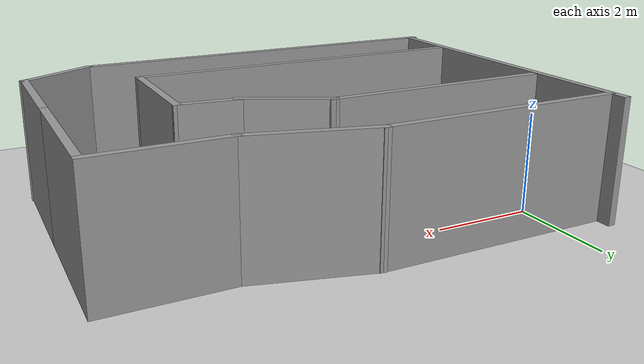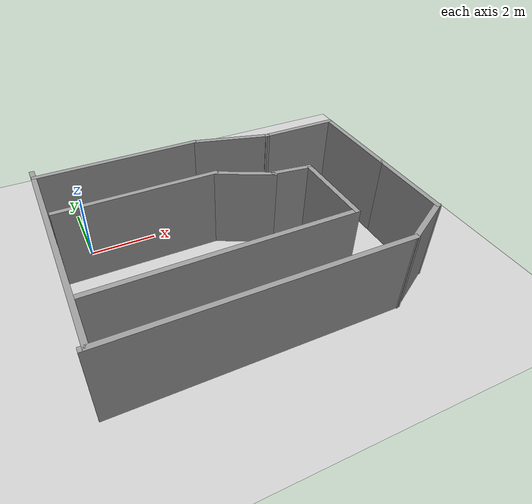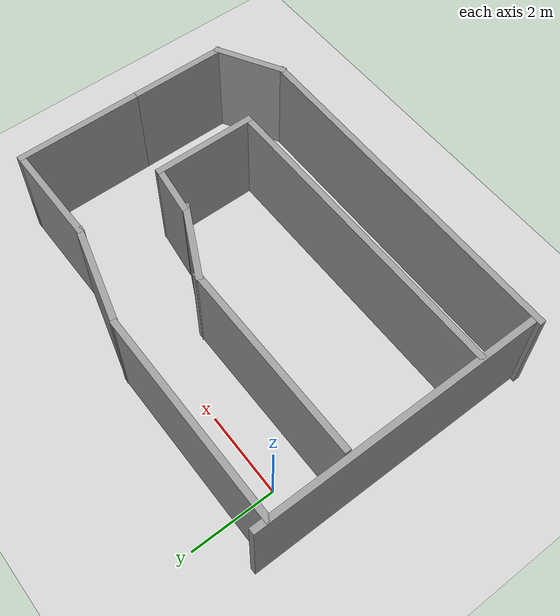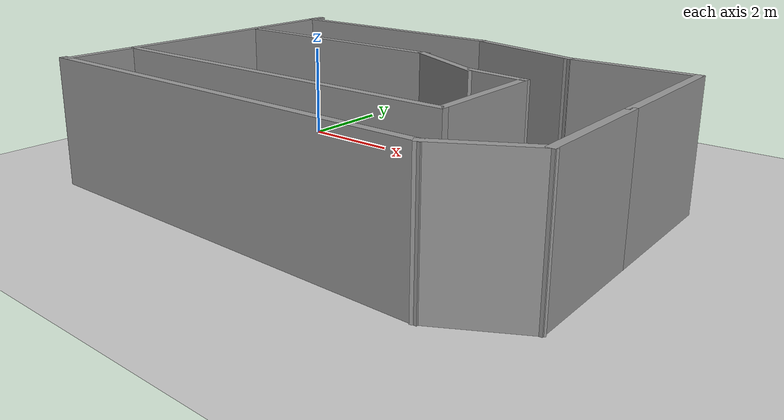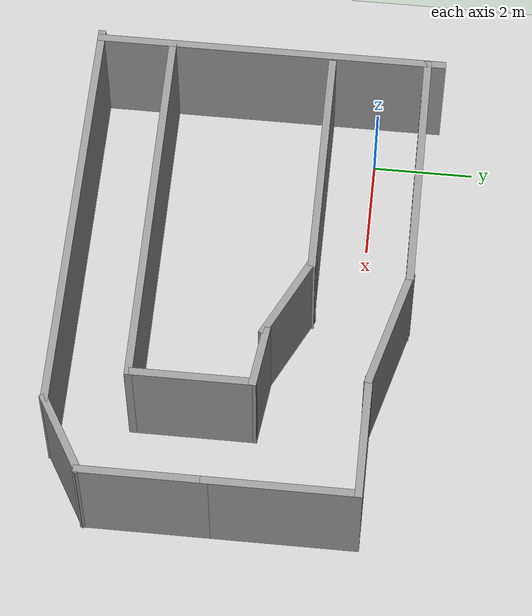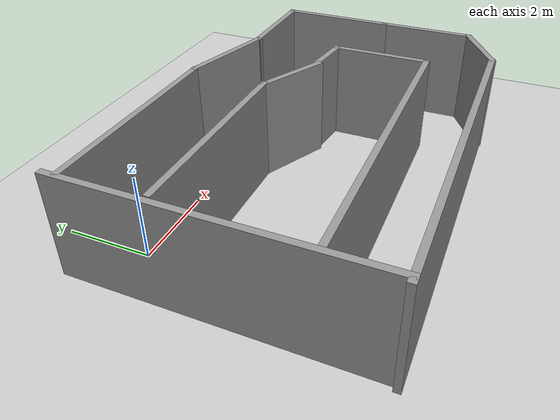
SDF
<sdf version="1.6">
 <world name="default">
  <light name="sun" type="directional">
   <pose>0 0 10 0 -0 0</pose>
   <diffuse>0.8 0.8 0.8 1</diffuse>
   <specular>0.2 0.2 0.2 1</specular>
   <attenuation>
    <range>1000</range>
    <constant>0.9</constant>
    <linear>0.01</linear>
    <quadratic>0.001</quadratic>
   </attenuation>
   <direction>-0.5 0.1 -0.9</direction>
  </light>
  <model name="ground_plane">
   <static>1</static>
   <link name="link">
    <collision name="collision">
     <geometry><plane><normal>0 0 1</normal><size>100 100</size></plane></geometry>
     <surface><friction><ode><mu>100</mu><mu2>50</mu2></ode></friction></surface>
    </collision>
    <visual name="visual">
     <cast_shadows>0</cast_shadows>
     <geometry><plane><normal>0 0 1</normal><size>100 100</size></plane></geometry>
     <material>
      <script><uri>file://media/materials/scripts/gazebo.material</uri><name>Gazebo/Grey</name></script>
     </material>
    </visual>
   </link>
  </model>
  <gravity>0 0 -9.8</gravity>
  <magnetic_field>6e-06 2.3e-05 -4.2e-05</magnetic_field>
  <atmosphere type="adiabatic"/>
  <physics name="default_physics" default="0" type="ode">
   <max_step_size>0.001</max_step_size>
   <real_time_factor>1</real_time_factor>
   <real_time_update_rate>1000</real_time_update_rate>
  </physics>
  <scene><ambient>0.4 0.4 0.4 1</ambient><background>0.7 0.7 0.7 1</background><shadows>1</shadows></scene>
  <audio><device>default</device></audio>
  <spherical_coordinates>
   <surface_model>EARTH_WGS84</surface_model>
   <latitude_deg>0</latitude_deg>
   <longitude_deg>0</longitude_deg>
   <elevation>0</elevation>
   <heading_deg>0</heading_deg>
  </spherical_coordinates>
  <model name="myworldhaha">
   <pose>3.68907 -2.26576 0 0 -0 0</pose>
   <link name="Wall_10">
    <collision name="Wall_10_Collision">
     <geometry><box><size>2.5 0.15 2.5</size></box></geometry>
     <pose>0 0 1.25 0 -0 0</pose>
    </collision>
    <visual name="Wall_10_Visual">
     <pose>0 0 1.25 0 -0 0</pose>
     <geometry><box><size>2.5 0.15 2.5</size></box></geometry>
     <material>
      <script><uri>file://media/materials/scripts/gazebo.material</uri><name>Gazebo/Grey</name></script>
      <ambient>1 1 1 1</ambient>
     </material>
     <meta><layer>0</layer></meta>
    </visual>
    <pose>4.77583 -1.45954 0 0 -0 -1.5708</pose>
   </link>
   <link name="Wall_11">
    <collision name="Wall_11_Collision">
     <geometry><box><size>1.75 0.15 2.5</size></box></geometry>
     <pose>0 0 1.25 0 -0 0</pose>
    </collision>
    <visual name="Wall_11_Visual">
     <pose>0 0 1.25 0 -0 0</pose>
     <geometry><box><size>1.75 0.15 2.5</size></box></geometry>
     <material>
      <script><uri>file://media/materials/scripts/gazebo.material</uri><name>Gazebo/Grey</name></script>
      <ambient>1 1 1 1</ambient>
     </material>
     <meta><layer>0</layer></meta>
    </visual>
    <pose>4.08301 -3.03454 0 0 -0 -2.61799</pose>
   </link>
   <link name="Wall_12">
    <collision name="Wall_12_Collision">
     <geometry><box><size>8.34318 0.15 2.5</size></box></geometry>
     <pose>0 0 1.25 0 -0 0</pose>
    </collision>
    <visual name="Wall_12_Visual">
     <pose>0 0 1.25 0 -0 0</pose>
     <geometry><box><size>8.34318 0.15 2.5</size></box></geometry>
     <material>
      <script><uri>file://media/materials/scripts/gazebo.material</uri><name>Gazebo/Grey</name></script>
      <ambient>1 1 1 1</ambient>
     </material>
     <meta><layer>0</layer></meta>
    </visual>
    <pose>-0.706333 -3.41127 0 0 -0 3.13591</pose>
   </link>
   <link name="Wall_13">
    <collision name="Wall_13_Collision">
     <geometry><box><size>7 0.15 2.5</size></box></geometry>
     <pose>0 0 1.25 0 -0 0</pose>
    </collision>
    <visual name="Wall_13_Visual">
     <pose>0 0 1.25 0 -0 0</pose>
     <geometry><box><size>7 0.15 2.5</size></box></geometry>
     <material>
      <script><uri>file://media/materials/scripts/gazebo.material</uri><name>Gazebo/Grey</name></script>
      <ambient>1 1 1 1</ambient>
     </material>
     <meta><layer>0</layer></meta>
    </visual>
    <pose>-4.70981 0.036988 0 0 -0 1.5708</pose>
   </link>
   <link name="Wall_29">
    <collision name="Wall_29_Collision">
     <geometry><box><size>4.75 0.15 2.5</size></box></geometry>
     <pose>0 0 1.25 0 -0 0</pose>
    </collision>
    <visual name="Wall_29_Visual">
     <pose>0 0 1.25 0 -0 0</pose>
     <geometry><box><size>4.75 0.15 2.5</size></box></geometry>
     <material>
      <script><uri>file://media/materials/scripts/gazebo.material</uri><name>Gazebo/Grey</name></script>
      <ambient>1 1 1 1</ambient>
     </material>
     <meta><layer>0</layer></meta>
    </visual>
    <pose>-2.23274 1.27715 0 0 -0 0</pose>
   </link>
   <link name="Wall_30">
    <collision name="Wall_30_Collision">
     <geometry><box><size>1.89528 0.15 2.5</size></box></geometry>
     <pose>0 0 1.25 0 -0 0</pose>
    </collision>
    <visual name="Wall_30_Visual">
     <pose>0 0 1.25 0 -0 0</pose>
     <geometry><box><size>1.89528 0.15 2.5</size></box></geometry>
     <material>
      <script><uri>file://media/materials/scripts/gazebo.material</uri><name>Gazebo/Grey</name></script>
      <ambient>1 1 1 1</ambient>
     </material>
     <meta><layer>0</layer></meta>
    </visual>
    <pose>0.802342 0.889083 0 0 -0 -0.460848</pose>
   </link>
   <link name="Wall_31">
    <collision name="Wall_31_Collision">
     <geometry><box><size>1.25882 0.15 2.5</size></box></geometry>
     <pose>0 0 1.25 0 -0 0</pose>
    </collision>
    <visual name="Wall_31_Visual">
     <pose>0 0 1.25 0 -0 0</pose>
     <geometry><box><size>1.25882 0.15 2.5</size></box></geometry>
     <material>
      <script><uri>file://media/materials/scripts/gazebo.material</uri><name>Gazebo/Grey</name></script>
      <ambient>1 1 1 1</ambient>
     </material>
     <meta><layer>0</layer></meta>
    </visual>
    <pose>2.13394 0.477752 0 0 -0 -0.126209</pose>
   </link>
   <link name="Wall_35">
    <collision name="Wall_35_Collision">
     <geometry><box><size>2.5 0.15 2.5</size></box></geometry>
     <pose>0 0 1.25 0 -0 0</pose>
    </collision>
    <visual name="Wall_35_Visual">
     <pose>0 0 1.25 0 -0 0</pose>
     <geometry><box><size>2.5 0.15 2.5</size></box></geometry>
     <material>
      <script><uri>file://media/materials/scripts/gazebo.material</uri><name>Gazebo/Grey</name></script>
      <ambient>1 1 1 1</ambient>
     </material>
     <meta><layer>0</layer></meta>
    </visual>
    <pose>2.68394 -0.767034 0 0 -0 -1.5708</pose>
   </link>
   <link name="Wall_36">
    <collision name="Wall_36_Collision">
     <geometry><box><size>7.5 0.15 2.5</size></box></geometry>
     <pose>0 0 1.25 0 -0 0</pose>
    </collision>
    <visual name="Wall_36_Visual">
     <pose>0 0 1.25 0 -0 0</pose>
     <geometry><box><size>7.5 0.15 2.5</size></box></geometry>
     <material>
      <script><uri>file://media/materials/scripts/gazebo.material</uri><name>Gazebo/Grey</name></script>
      <ambient>1 1 1 1</ambient>
     </material>
     <meta><layer>0</layer></meta>
    </visual>
    <pose>-0.991056 -1.94203 0 0 -0 3.14159</pose>
   </link>
   <link name="Wall_5">
    <collision name="Wall_5_Collision">
     <geometry><box><size>5 0.15 2.5</size></box></geometry>
     <pose>0 0 1.25 0 -0 0</pose>
    </collision>
    <visual name="Wall_5_Visual">
     <pose>0 0 1.25 0 -0 0</pose>
     <geometry><box><size>5 0.15 2.5</size></box></geometry>
     <material>
      <script><uri>file://media/materials/scripts/gazebo.material</uri><name>Gazebo/Grey</name></script>
      <ambient>1 1 1 1</ambient>
     </material>
     <meta><layer>0</layer></meta>
    </visual>
    <pose>-2.2691 3.17369 0 0 -0 0</pose>
   </link>
   <link name="Wall_6">
    <collision name="Wall_6_Collision">
     <geometry><box><size>2.5 0.15 2.5</size></box></geometry>
     <pose>0 0 1.25 0 -0 0</pose>
    </collision>
    <visual name="Wall_6_Visual">
     <pose>0 0 1.25 0 -0 0</pose>
     <geometry><box><size>2.5 0.15 2.5</size></box></geometry>
     <material>
      <script><uri>file://media/materials/scripts/gazebo.material</uri><name>Gazebo/Grey</name></script>
      <ambient>1 1 1 1</ambient>
     </material>
     <meta><layer>0</layer></meta>
    </visual>
    <pose>1.29087 2.86958 0 0 -0 -0.261799</pose>
   </link>
   <link name="Wall_8">
    <collision name="Wall_8_Collision">
     <geometry><box><size>2.5 0.15 2.5</size></box></geometry>
     <pose>0 0 1.25 0 -0 0</pose>
    </collision>
    <visual name="Wall_8_Visual">
     <pose>0 0 1.25 0 -0 0</pose>
     <geometry><box><size>2.5 0.15 2.5</size></box></geometry>
     <material>
      <script><uri>file://media/materials/scripts/gazebo.material</uri><name>Gazebo/Grey</name></script>
      <ambient>1 1 1 1</ambient>
     </material>
     <meta><layer>0</layer></meta>
    </visual>
    <pose>3.60083 2.56546 0 0 -0 0</pose>
   </link>
   <link name="Wall_9">
    <collision name="Wall_9_Collision">
     <geometry><box><size>3 0.15 2.5</size></box></geometry>
     <pose>0 0 1.25 0 -0 0</pose>
    </collision>
    <visual name="Wall_9_Visual">
     <pose>0 0 1.25 0 -0 0</pose>
     <geometry><box><size>3 0.15 2.5</size></box></geometry>
     <material>
      <script><uri>file://media/materials/scripts/gazebo.material</uri><name>Gazebo/Grey</name></script>
      <ambient>1 1 1 1</ambient>
     </material>
     <meta><layer>0</layer></meta>
    </visual>
    <pose>4.77583 1.14046 0 0 -0 -1.5708</pose>
   </link>
   <static>1</static>
  </model>
 </world>
</sdf>
